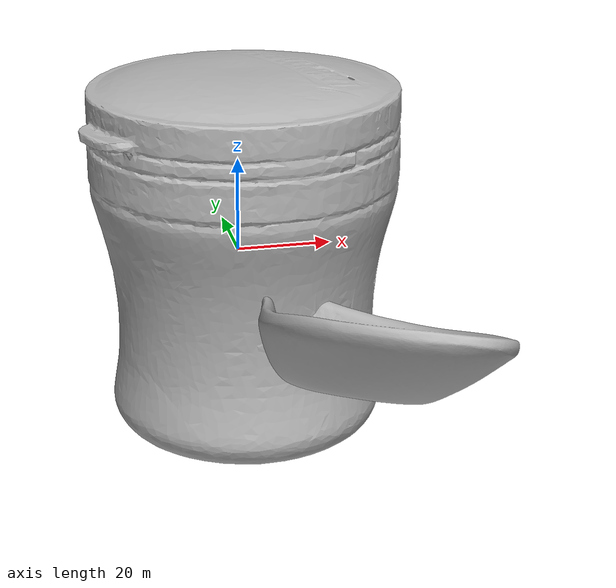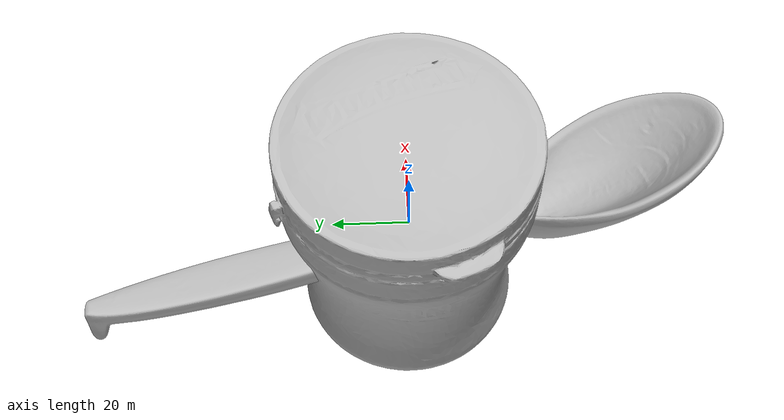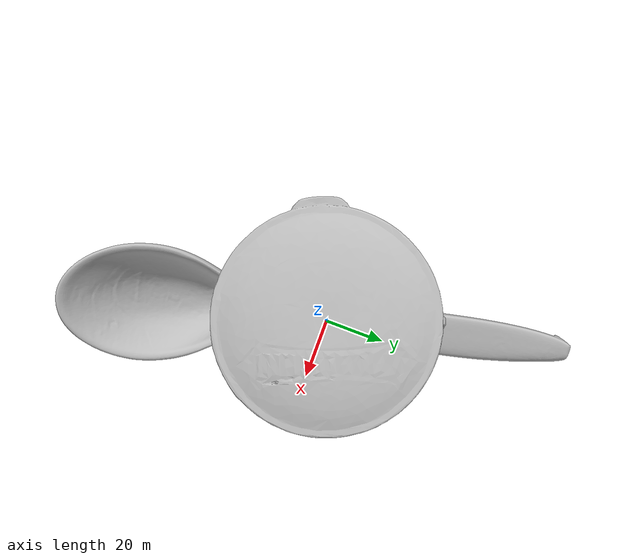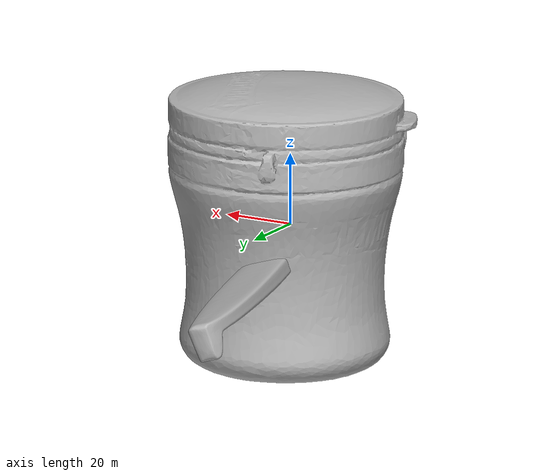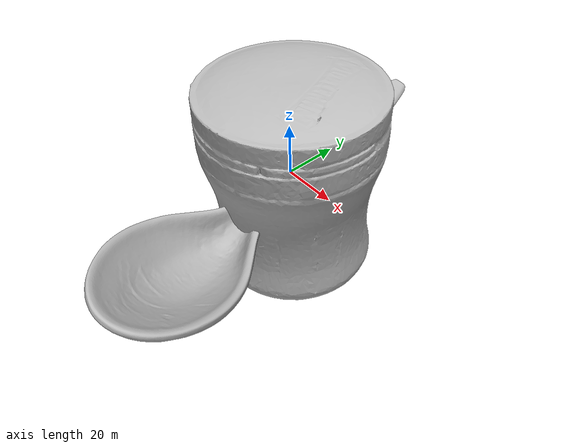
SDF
<sdf version="1.4">
 <world name="default">
  <light name="light1" type="point">
   <pose>0 0 1 0 0 0</pose>
   <diffuse>3 3 3 1</diffuse>
   <specular>3 3 3 1</specular>
  </light>
  <light name="light2" type="point">
   <pose>0 0.5 2 0 0 0</pose>
   <diffuse>1 1 1 1</diffuse>
   <specular>1 1 1 1</specular>
  </light>
  <light name="light3" type="point">
   <pose>0 0.5 2 0 0 0</pose>
   <diffuse>3 3 3 1</diffuse>
   <specular>3 3 3 1</specular>
  </light>
  <scene><ambient>0.7 0.7 0.7</ambient></scene>
  <model name="bottle1">
   <link name="link_bottle1">
    <collision name="default">
     <geometry>
      <mesh><uri>model://green_arrow/collision_meshes/collision.obj</uri><scale>1.0 1.0 1.0</scale></mesh>
     </geometry>
     <surface>
      <friction><ode><mu>0.5</mu><mu2>0.5</mu2></ode></friction>
      <contact><ode><max_vel>0</max_vel><min_depth>0.0001</min_depth><kp>1e8</kp></ode></contact>
     </surface>
    </collision>
    <visual name="default">
     <geometry>
      <mesh><uri>model://green_arrow/visual_meshes/visual.dae</uri><scale>1.0 1.0 1.0</scale></mesh>
     </geometry>
    </visual>
    <inertial>
     <mass>0.31872013211250305</mass>
     <pose>0.0005358478520065546 -0.0008270691032521427 0.002210969803854823 -0.06332250060756175 0.012985582117300467 0.6741007804522225</pose>
     <inertia>
      <ixx>0.00023120124</ixx>
      <iyy>0.000230851</iyy>
      <izz>0.0001492862</izz>
      <ixy>0</ixy>
      <ixz>0</ixz>
      <iyz>0</iyz>
     </inertia>
    </inertial>
   </link>
   <pose>0.2686314284801483 -0.13545793294906616 0.03903084993362427 0.03851801052862029 0.024629456389638534 1.2782643978371813</pose>
  </model>
  <model name="bottle2">
   <link name="link_bottle2">
    <collision name="default">
     <geometry>
      <mesh><uri>model://pigeon/collision_meshes/collision.obj</uri><scale>1.0 1.0 1.0</scale></mesh>
     </geometry>
     <surface>
      <friction><ode><mu>0.5</mu><mu2>0.5</mu2></ode></friction>
      <contact><ode><max_vel>0</max_vel><min_depth>0.0001</min_depth><kp>1e8</kp></ode></contact>
     </surface>
    </collision>
    <visual name="default">
     <geometry><mesh><uri>model://pigeon/visual_meshes/visual.dae</uri><scale>1.0 1.0 1.0</scale></mesh></geometry>
    </visual>
    <inertial>
     <mass>0.5279804468154907</mass>
     <pose>-9.675472392700613e-05 -0.0001927677367348224 -0.01593620702624321 -0.011704407495178063 -0.0012978199512556723 -0.04198835484465517</pose>
     <inertia>
      <ixx>0.0013198232</ixx>
      <iyy>0.0014089285</iyy>
      <izz>0.000271492</izz>
      <ixy>0</ixy>
      <ixz>0</ixz>
      <iyz>0</iyz>
     </inertia>
    </inertial>
   </link>
   <pose>0.06334581226110458 -0.20636528730392456 0.09864482283592224 2.388013670077486e-05 3.163939785328952e-06 -0.5627986359903445</pose>
  </model>
  <model name="silverware1">
   <link name="link_silverware1">
    <collision name="default">
     <geometry>
      <mesh><uri>model://doraemon_spoon/collision_meshes/collision.obj</uri><scale>1.0 1.0 1.0</scale></mesh>
     </geometry>
     <surface>
      <friction><ode><mu>0.5</mu><mu2>0.5</mu2></ode></friction>
      <contact><ode><max_vel>0</max_vel><min_depth>0.0001</min_depth><kp>1e8</kp></ode></contact>
     </surface>
    </collision>
    <visual name="default">
     <geometry>
      <mesh><uri>model://doraemon_spoon/visual_meshes/visual.dae</uri><scale>1.0 1.0 1.0</scale></mesh>
     </geometry>
    </visual>
    <inertial>
     <mass>0.014849366620182991</mass>
     <pose>-0.022165074944496155 -0.0006374582299031317 -0.0033325457479804754 -0.009146985479672626 0.07380416127774835 -0.014123827206003371</pose>
     <inertia>
      <ixx>1.1631438e-06</ixx>
      <iyy>3.3035012e-05</iyy>
      <izz>3.359665e-05</izz>
      <ixy>0</ixy>
      <ixz>0</ixz>
      <iyz>0</iyz>
     </inertia>
    </inertial>
   </link>
   <pose>0.0852140262722969 -0.11239490658044815 0.014739429578185081 0.27901892771991815 -0.010338257288369115 1.8108025018312521</pose>
  </model>
  <model name="stationery1">
   <link name="link_stationery1">
    <collision name="default">
     <geometry>
      <mesh><uri>model://correction_fuid/collision_meshes/collision.obj</uri><scale>1.0 1.0 1.0</scale></mesh>
     </geometry>
     <surface>
      <friction><ode><mu>0.5</mu><mu2>0.5</mu2></ode></friction>
      <contact><ode><max_vel>0</max_vel><min_depth>0.0001</min_depth><kp>1e8</kp></ode></contact>
     </surface>
    </collision>
    <visual name="default">
     <geometry>
      <mesh><uri>model://correction_fuid/visual_meshes/visual.dae</uri><scale>1.0 1.0 1.0</scale></mesh>
     </geometry>
    </visual>
    <inertial>
     <mass>0.03422689810395241</mass>
     <pose>-0.00012557733862195164 -0.0009722901741042733 -0.001618212671019137 -0.010846609605282003 0.019488228935667613 -0.015992456651572746</pose>
     <inertia>
      <ixx>3.3149332e-05</ixx>
      <iyy>2.0062398e-06</iyy>
      <izz>3.4012115e-05</izz>
      <ixy>0</ixy>
      <ixz>0</ixz>
      <iyz>0</iyz>
     </inertia>
    </inertial>
   </link>
   <pose>0.2093237042427063 -0.3279649615287781 0.009632828645408154 -0.0017271815420687815 -0.05616750700750365 -1.69778383645727</pose>
  </model>
  <model name="bowl1">
   <link name="link_bowl1">
    <collision name="default">
     <geometry>
      <mesh><uri>model://doraemon_bowl/collision_meshes/collision.obj</uri><scale>1.0 1.0 1.0</scale></mesh>
     </geometry>
     <surface>
      <friction><ode><mu>0.5</mu><mu2>0.5</mu2></ode></friction>
      <contact><ode><max_vel>0</max_vel><min_depth>0.0001</min_depth><kp>1e8</kp></ode></contact>
     </surface>
    </collision>
    <visual name="default">
     <geometry>
      <mesh><uri>model://doraemon_bowl/visual_meshes/visual.dae</uri><scale>1.0 1.0 1.0</scale></mesh>
     </geometry>
    </visual>
    <inertial>
     <mass>0.10659078508615494</mass>
     <pose>-0.014629560522735119 0.00048571196384727955 -0.002086488762870431 -0.00509398386316645 -0.10568401530986889 -0.026426397124795446</pose>
     <inertia>
      <ixx>0.00014780516</ixx>
      <iyy>0.00019451023</iyy>
      <izz>0.00028617028</izz>
      <ixy>0</ixy>
      <ixz>0</ixz>
      <iyz>0</iyz>
     </inertia>
    </inertial>
   </link>
   <pose>0.07488182187080383 0.16339683532714844 0.025901731103658676 0.008608678977112932 0.006755809473415159 2.032683938970347</pose>
  </model>
  <model name="cup1">
   <link name="link_cup1">
    <collision name="default">
     <geometry>
      <mesh><uri>model://doraemon_cup/collision_meshes/collision.obj</uri><scale>1.0 1.0 1.0</scale></mesh>
     </geometry>
     <surface>
      <friction><ode><mu>0.5</mu><mu2>0.5</mu2></ode></friction>
      <contact><ode><max_vel>0</max_vel><min_depth>0.0001</min_depth><kp>1e8</kp></ode></contact>
     </surface>
    </collision>
    <visual name="default">
     <geometry>
      <mesh><uri>model://doraemon_cup/visual_meshes/visual.dae</uri><scale>1.0 1.0 1.0</scale></mesh>
     </geometry>
    </visual>
    <inertial>
     <mass>0.07019124925136566</mass>
     <pose>-0.0003292977053206414 -0.0016633619088679552 -0.0022522560320794582 0.19498543632694942 -0.013693723781048914 -0.3205469926711019</pose>
     <inertia>
      <ixx>9.599299e-05</ixx>
      <iyy>9.2830705e-05</iyy>
      <izz>7.5864096e-05</izz>
      <ixy>0</ixy>
      <ixz>0</ixz>
      <iyz>0</iyz>
     </inertia>
    </inertial>
   </link>
   <pose>-0.05608218163251877 0.26689091324806213 0.046229902654886246 -0.012950660153879762 -0.007418335878436465 -0.03597420198385304</pose>
  </model>
  <model name="plate1">
   <link name="link_plate1">
    <collision name="default">
     <geometry>
      <mesh><uri>model://hello_kitty_plate/collision_meshes/collision.obj</uri><scale>1.0 1.0 1.0</scale></mesh>
     </geometry>
     <surface>
      <friction><ode><mu>0.5</mu><mu2>0.5</mu2></ode></friction>
      <contact><ode><max_vel>0</max_vel><min_depth>0.0001</min_depth><kp>1e8</kp></ode></contact>
     </surface>
    </collision>
    <visual name="default">
     <geometry>
      <mesh><uri>model://hello_kitty_plate/visual_meshes/visual.dae</uri><scale>1.0 1.0 1.0</scale></mesh>
     </geometry>
    </visual>
    <inertial>
     <mass>0.03849242627620697</mass>
     <pose>0.007314295973628759 0.00028937432216480374 -0.0027947183698415756 -0.00010431794154861864 -0.007054443662422379 -0.014449020506613262</pose>
     <inertia>
      <ixx>7.4224925e-05</ixx>
      <iyy>0.00014008483</iyy>
      <izz>0.00021270475</izz>
      <ixy>0</ixy>
      <ixz>0</ixz>
      <iyz>0</iyz>
     </inertia>
    </inertial>
   </link>
   <pose>0.15962021052837372 -0.04648105055093765 0.03871911019086838 0.10109046095629541 -0.3508228521290134 -1.3669759466331293</pose>
  </model>
  <model name="box4">
   <link name="link_box4">
    <collision name="default">
     <geometry>
      <mesh><uri>model://wooden_puzzle2/collision_meshes/collision.obj</uri><scale>1.0 1.0 1.0</scale></mesh>
     </geometry>
     <surface>
      <friction><ode><mu>0.5</mu><mu2>0.5</mu2></ode></friction>
      <contact><ode><max_vel>0</max_vel><min_depth>0.0001</min_depth><kp>1e8</kp></ode></contact>
     </surface>
    </collision>
    <visual name="default">
     <geometry>
      <mesh><uri>model://wooden_puzzle2/visual_meshes/visual.dae</uri><scale>1.0 1.0 1.0</scale></mesh>
     </geometry>
    </visual>
    <inertial>
     <mass>0.023858843371272087</mass>
     <pose>2.7402536943554878e-05 4.997663199901581e-05 6.587122334167361e-05 -0.1920347142936951 0.6112821219690274 -0.6338705729322873</pose>
     <inertia>
      <ixx>4.4351036e-06</ixx>
      <iyy>4.557319e-06</iyy>
      <izz>4.4924864e-06</izz>
      <ixy>0</ixy>
      <ixz>0</ixz>
      <iyz>0</iyz>
     </inertia>
    </inertial>
   </link>
   <pose>-0.07694963365793228 0.22077512741088867 0.01691773347556591 0.020848701582529248 0.0007210123075238609 -2.09725573872523</pose>
  </model>
  <physics type="ode">
   <max_contacts>50</max_contacts>
   <ode>
    <solver><type>quick</type><iters>75</iters></solver>
    <constraints>
     <contact_max_correcting_vel>0</contact_max_correcting_vel>
     <contact_surface_layer>0</contact_surface_layer>
    </constraints>
   </ode>
  </physics>
 </world>
</sdf>
